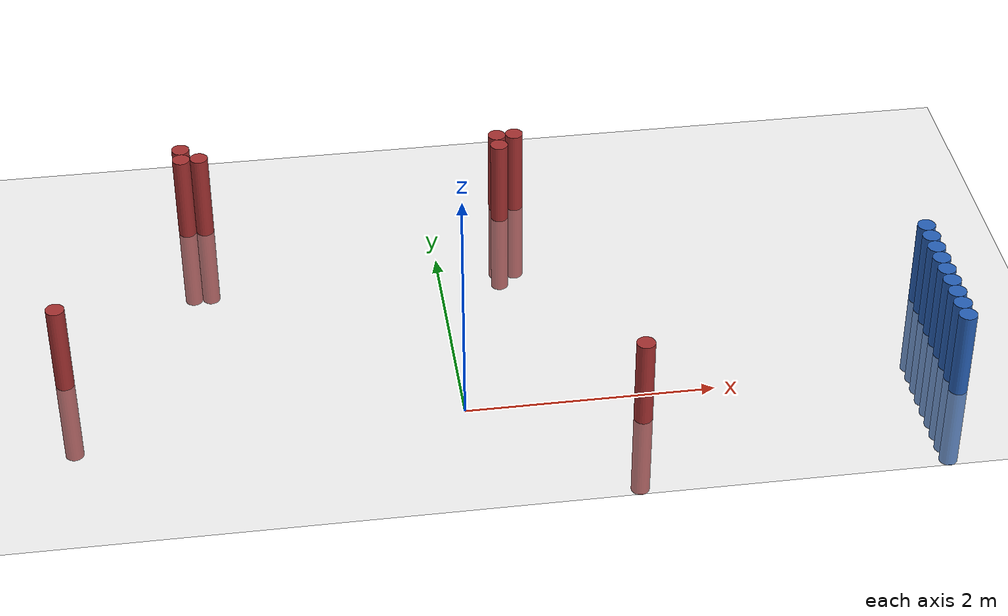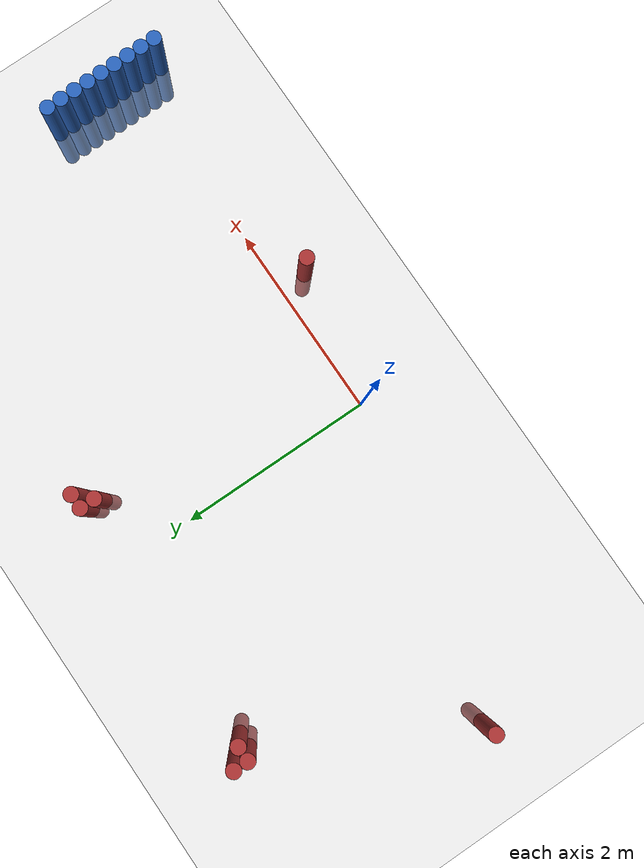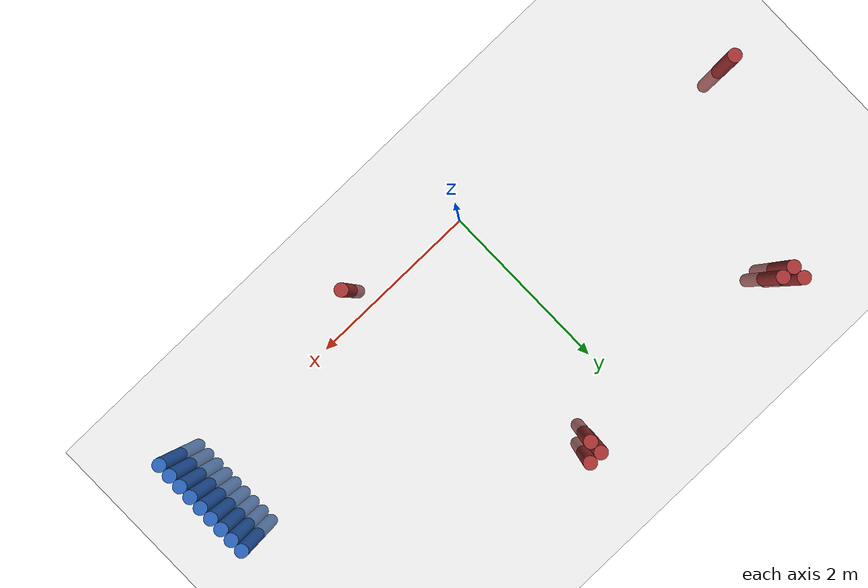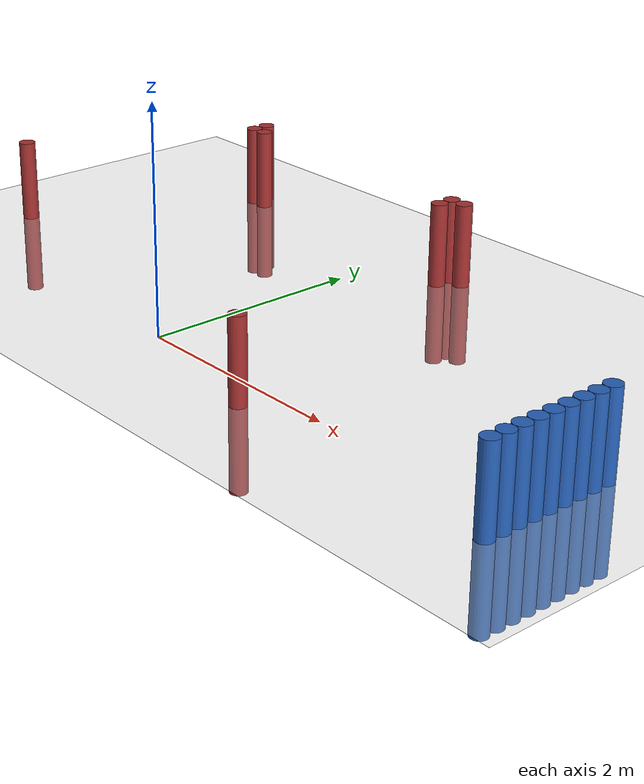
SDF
<sdf version="1.6">
 <world name="default">
  <model name="ground_plane">
   <static>1</static>
   <link name="link">
    <collision name="collision">
     <geometry><plane><normal>0 0 1</normal><size>100 100</size></plane></geometry>
     <surface><friction><ode><mu>100</mu><mu2>50</mu2></ode></friction></surface>
    </collision>
    <visual name="visual">
     <cast_shadows>0</cast_shadows>
     <geometry><plane><normal>0 0 1</normal><size>100 100</size></plane></geometry>
     <material>
      <script><uri>file://media/materials/scripts/gazebo.material</uri><name>Gazebo/Grey</name></script>
     </material>
    </visual>
   </link>
  </model>
  <model name="unit_cylinder_110">
   <static>1</static>
   <pose>3.925000 -0.275000 0.000000 0.000000 0.000000 0.000000</pose>
   <link name="link">
    <inertial>
     <mass>1</mass>
     <inertia><ixx>0.145833</ixx><ixy>0</ixy><ixz>0</ixz><iyy>0.145833</iyy><iyz>0</iyz><izz>0.125</izz></inertia>
    </inertial>
    <collision name="collision">
     <geometry><cylinder><radius>0.075000</radius><length>1.5</length></cylinder></geometry>
    </collision>
    <visual name="visual">
     <geometry><cylinder><radius>0.075000</radius><length>1.5</length></cylinder></geometry>
     <material>
      <ambient>0.152000 0.379000 0.720000 1</ambient>
      <diffuse>0.152000 0.379000 0.720000 1</diffuse>
     </material>
     <material>
      <script><name>Gazebo/Grey</name><uri>file://media/materials/scripts/gazebo.material</uri></script>
     </material>
    </visual>
   </link>
  </model>
  <model name="unit_cylinder_112">
   <static>1</static>
   <pose>3.925000 -0.125000 0.000000 0.000000 0.000000 0.000000</pose>
   <link name="link">
    <inertial>
     <mass>1</mass>
     <inertia><ixx>0.145833</ixx><ixy>0</ixy><ixz>0</ixz><iyy>0.145833</iyy><iyz>0</iyz><izz>0.125</izz></inertia>
    </inertial>
    <collision name="collision">
     <geometry><cylinder><radius>0.075000</radius><length>1.5</length></cylinder></geometry>
    </collision>
    <visual name="visual">
     <geometry><cylinder><radius>0.075000</radius><length>1.5</length></cylinder></geometry>
     <material>
      <ambient>0.152000 0.379000 0.720000 1</ambient>
      <diffuse>0.152000 0.379000 0.720000 1</diffuse>
     </material>
     <material>
      <script><name>Gazebo/Grey</name><uri>file://media/materials/scripts/gazebo.material</uri></script>
     </material>
    </visual>
   </link>
  </model>
  <model name="unit_cylinder_114">
   <static>1</static>
   <pose>3.925000 0.025000 0.000000 0.000000 0.000000 0.000000</pose>
   <link name="link">
    <inertial>
     <mass>1</mass>
     <inertia><ixx>0.145833</ixx><ixy>0</ixy><ixz>0</ixz><iyy>0.145833</iyy><iyz>0</iyz><izz>0.125</izz></inertia>
    </inertial>
    <collision name="collision">
     <geometry><cylinder><radius>0.075000</radius><length>1.5</length></cylinder></geometry>
    </collision>
    <visual name="visual">
     <geometry><cylinder><radius>0.075000</radius><length>1.5</length></cylinder></geometry>
     <material>
      <ambient>0.152000 0.379000 0.720000 1</ambient>
      <diffuse>0.152000 0.379000 0.720000 1</diffuse>
     </material>
     <material>
      <script><name>Gazebo/Grey</name><uri>file://media/materials/scripts/gazebo.material</uri></script>
     </material>
    </visual>
   </link>
  </model>
  <model name="unit_cylinder_116">
   <static>1</static>
   <pose>3.925000 0.175000 0.000000 0.000000 0.000000 0.000000</pose>
   <link name="link">
    <inertial>
     <mass>1</mass>
     <inertia><ixx>0.145833</ixx><ixy>0</ixy><ixz>0</ixz><iyy>0.145833</iyy><iyz>0</iyz><izz>0.125</izz></inertia>
    </inertial>
    <collision name="collision">
     <geometry><cylinder><radius>0.075000</radius><length>1.5</length></cylinder></geometry>
    </collision>
    <visual name="visual">
     <geometry><cylinder><radius>0.075000</radius><length>1.5</length></cylinder></geometry>
     <material>
      <ambient>0.152000 0.379000 0.720000 1</ambient>
      <diffuse>0.152000 0.379000 0.720000 1</diffuse>
     </material>
     <material>
      <script><name>Gazebo/Grey</name><uri>file://media/materials/scripts/gazebo.material</uri></script>
     </material>
    </visual>
   </link>
  </model>
  <model name="unit_cylinder_118">
   <static>1</static>
   <pose>3.925000 0.325000 0.000000 0.000000 0.000000 0.000000</pose>
   <link name="link">
    <inertial>
     <mass>1</mass>
     <inertia><ixx>0.145833</ixx><ixy>0</ixy><ixz>0</ixz><iyy>0.145833</iyy><iyz>0</iyz><izz>0.125</izz></inertia>
    </inertial>
    <collision name="collision">
     <geometry><cylinder><radius>0.075000</radius><length>1.5</length></cylinder></geometry>
    </collision>
    <visual name="visual">
     <geometry><cylinder><radius>0.075000</radius><length>1.5</length></cylinder></geometry>
     <material>
      <ambient>0.152000 0.379000 0.720000 1</ambient>
      <diffuse>0.152000 0.379000 0.720000 1</diffuse>
     </material>
     <material>
      <script><name>Gazebo/Grey</name><uri>file://media/materials/scripts/gazebo.material</uri></script>
     </material>
    </visual>
   </link>
  </model>
  <model name="unit_cylinder_120">
   <static>1</static>
   <pose>3.925000 0.475000 0.000000 0.000000 0.000000 0.000000</pose>
   <link name="link">
    <inertial>
     <mass>1</mass>
     <inertia><ixx>0.145833</ixx><ixy>0</ixy><ixz>0</ixz><iyy>0.145833</iyy><iyz>0</iyz><izz>0.125</izz></inertia>
    </inertial>
    <collision name="collision">
     <geometry><cylinder><radius>0.075000</radius><length>1.5</length></cylinder></geometry>
    </collision>
    <visual name="visual">
     <geometry><cylinder><radius>0.075000</radius><length>1.5</length></cylinder></geometry>
     <material>
      <ambient>0.152000 0.379000 0.720000 1</ambient>
      <diffuse>0.152000 0.379000 0.720000 1</diffuse>
     </material>
     <material>
      <script><name>Gazebo/Grey</name><uri>file://media/materials/scripts/gazebo.material</uri></script>
     </material>
    </visual>
   </link>
  </model>
  <model name="unit_cylinder_122">
   <static>1</static>
   <pose>3.925000 0.625000 0.000000 0.000000 0.000000 0.000000</pose>
   <link name="link">
    <inertial>
     <mass>1</mass>
     <inertia><ixx>0.145833</ixx><ixy>0</ixy><ixz>0</ixz><iyy>0.145833</iyy><iyz>0</iyz><izz>0.125</izz></inertia>
    </inertial>
    <collision name="collision">
     <geometry><cylinder><radius>0.075000</radius><length>1.5</length></cylinder></geometry>
    </collision>
    <visual name="visual">
     <geometry><cylinder><radius>0.075000</radius><length>1.5</length></cylinder></geometry>
     <material>
      <ambient>0.152000 0.379000 0.720000 1</ambient>
      <diffuse>0.152000 0.379000 0.720000 1</diffuse>
     </material>
     <material>
      <script><name>Gazebo/Grey</name><uri>file://media/materials/scripts/gazebo.material</uri></script>
     </material>
    </visual>
   </link>
  </model>
  <model name="unit_cylinder_124">
   <static>1</static>
   <pose>3.925000 0.775000 0.000000 0.000000 0.000000 0.000000</pose>
   <link name="link">
    <inertial>
     <mass>1</mass>
     <inertia><ixx>0.145833</ixx><ixy>0</ixy><ixz>0</ixz><iyy>0.145833</iyy><iyz>0</iyz><izz>0.125</izz></inertia>
    </inertial>
    <collision name="collision">
     <geometry><cylinder><radius>0.075000</radius><length>1.5</length></cylinder></geometry>
    </collision>
    <visual name="visual">
     <geometry><cylinder><radius>0.075000</radius><length>1.5</length></cylinder></geometry>
     <material>
      <ambient>0.152000 0.379000 0.720000 1</ambient>
      <diffuse>0.152000 0.379000 0.720000 1</diffuse>
     </material>
     <material>
      <script><name>Gazebo/Grey</name><uri>file://media/materials/scripts/gazebo.material</uri></script>
     </material>
    </visual>
   </link>
  </model>
  <model name="unit_cylinder_126">
   <static>1</static>
   <pose>3.925000 0.925000 0.000000 0.000000 0.000000 0.000000</pose>
   <link name="link">
    <inertial>
     <mass>1</mass>
     <inertia><ixx>0.145833</ixx><ixy>0</ixy><ixz>0</ixz><iyy>0.145833</iyy><iyz>0</iyz><izz>0.125</izz></inertia>
    </inertial>
    <collision name="collision">
     <geometry><cylinder><radius>0.075000</radius><length>1.5</length></cylinder></geometry>
    </collision>
    <visual name="visual">
     <geometry><cylinder><radius>0.075000</radius><length>1.5</length></cylinder></geometry>
     <material>
      <ambient>0.152000 0.379000 0.720000 1</ambient>
      <diffuse>0.152000 0.379000 0.720000 1</diffuse>
     </material>
     <material>
      <script><name>Gazebo/Grey</name><uri>file://media/materials/scripts/gazebo.material</uri></script>
     </material>
    </visual>
   </link>
  </model>
  <model name="unit_cylinder_281">
   <static>1</static>
   <pose>-3.125000 0.775000 0.000000 0.000000 0.000000 0.000000</pose>
   <link name="link">
    <inertial>
     <mass>1</mass>
     <inertia><ixx>0.145833</ixx><ixy>0</ixy><ixz>0</ixz><iyy>0.145833</iyy><iyz>0</iyz><izz>0.125</izz></inertia>
    </inertial>
    <collision name="collision">
     <geometry><cylinder><radius>0.075000</radius><length>1.5</length></cylinder></geometry>
    </collision>
    <visual name="visual">
     <geometry><cylinder><radius>0.075000</radius><length>1.5</length></cylinder></geometry>
     <material>
      <ambient>0.648000 0.192000 0.192000 1</ambient>
      <diffuse>0.648000 0.192000 0.192000 1</diffuse>
     </material>
     <material>
      <script><name>Gazebo/Grey</name><uri>file://media/materials/scripts/gazebo.material</uri></script>
     </material>
    </visual>
   </link>
  </model>
  <model name="unit_cylinder_285">
   <static>1</static>
   <pose>-2.075000 2.725000 0.000000 0.000000 0.000000 0.000000</pose>
   <link name="link">
    <inertial>
     <mass>1</mass>
     <inertia><ixx>0.145833</ixx><ixy>0</ixy><ixz>0</ixz><iyy>0.145833</iyy><iyz>0</iyz><izz>0.125</izz></inertia>
    </inertial>
    <collision name="collision">
     <geometry><cylinder><radius>0.075000</radius><length>1.5</length></cylinder></geometry>
    </collision>
    <visual name="visual">
     <geometry><cylinder><radius>0.075000</radius><length>1.5</length></cylinder></geometry>
     <material>
      <ambient>0.648000 0.192000 0.192000 1</ambient>
      <diffuse>0.648000 0.192000 0.192000 1</diffuse>
     </material>
     <material>
      <script><name>Gazebo/Grey</name><uri>file://media/materials/scripts/gazebo.material</uri></script>
     </material>
    </visual>
   </link>
  </model>
  <model name="unit_cylinder_286">
   <static>1</static>
   <pose>-2.075000 2.875000 0.000000 0.000000 0.000000 0.000000</pose>
   <link name="link">
    <inertial>
     <mass>1</mass>
     <inertia><ixx>0.145833</ixx><ixy>0</ixy><ixz>0</ixz><iyy>0.145833</iyy><iyz>0</iyz><izz>0.125</izz></inertia>
    </inertial>
    <collision name="collision">
     <geometry><cylinder><radius>0.075000</radius><length>1.5</length></cylinder></geometry>
    </collision>
    <visual name="visual">
     <geometry><cylinder><radius>0.075000</radius><length>1.5</length></cylinder></geometry>
     <material>
      <ambient>0.648000 0.192000 0.192000 1</ambient>
      <diffuse>0.648000 0.192000 0.192000 1</diffuse>
     </material>
     <material>
      <script><name>Gazebo/Grey</name><uri>file://media/materials/scripts/gazebo.material</uri></script>
     </material>
    </visual>
   </link>
  </model>
  <model name="unit_cylinder_289">
   <static>1</static>
   <pose>-1.925000 2.725000 0.000000 0.000000 0.000000 0.000000</pose>
   <link name="link">
    <inertial>
     <mass>1</mass>
     <inertia><ixx>0.145833</ixx><ixy>0</ixy><ixz>0</ixz><iyy>0.145833</iyy><iyz>0</iyz><izz>0.125</izz></inertia>
    </inertial>
    <collision name="collision">
     <geometry><cylinder><radius>0.075000</radius><length>1.5</length></cylinder></geometry>
    </collision>
    <visual name="visual">
     <geometry><cylinder><radius>0.075000</radius><length>1.5</length></cylinder></geometry>
     <material>
      <ambient>0.648000 0.192000 0.192000 1</ambient>
      <diffuse>0.648000 0.192000 0.192000 1</diffuse>
     </material>
     <material>
      <script><name>Gazebo/Grey</name><uri>file://media/materials/scripts/gazebo.material</uri></script>
     </material>
    </visual>
   </link>
  </model>
  <model name="unit_cylinder_290">
   <static>1</static>
   <pose>0.625000 2.575000 0.000000 0.000000 0.000000 0.000000</pose>
   <link name="link">
    <inertial>
     <mass>1</mass>
     <inertia><ixx>0.145833</ixx><ixy>0</ixy><ixz>0</ixz><iyy>0.145833</iyy><iyz>0</iyz><izz>0.125</izz></inertia>
    </inertial>
    <collision name="collision">
     <geometry><cylinder><radius>0.075000</radius><length>1.5</length></cylinder></geometry>
    </collision>
    <visual name="visual">
     <geometry><cylinder><radius>0.075000</radius><length>1.5</length></cylinder></geometry>
     <material>
      <ambient>0.648000 0.192000 0.192000 1</ambient>
      <diffuse>0.648000 0.192000 0.192000 1</diffuse>
     </material>
     <material>
      <script><name>Gazebo/Grey</name><uri>file://media/materials/scripts/gazebo.material</uri></script>
     </material>
    </visual>
   </link>
  </model>
  <model name="unit_cylinder_291">
   <static>1</static>
   <pose>0.625000 2.725000 0.000000 0.000000 0.000000 0.000000</pose>
   <link name="link">
    <inertial>
     <mass>1</mass>
     <inertia><ixx>0.145833</ixx><ixy>0</ixy><ixz>0</ixz><iyy>0.145833</iyy><iyz>0</iyz><izz>0.125</izz></inertia>
    </inertial>
    <collision name="collision">
     <geometry><cylinder><radius>0.075000</radius><length>1.5</length></cylinder></geometry>
    </collision>
    <visual name="visual">
     <geometry><cylinder><radius>0.075000</radius><length>1.5</length></cylinder></geometry>
     <material>
      <ambient>0.648000 0.192000 0.192000 1</ambient>
      <diffuse>0.648000 0.192000 0.192000 1</diffuse>
     </material>
     <material>
      <script><name>Gazebo/Grey</name><uri>file://media/materials/scripts/gazebo.material</uri></script>
     </material>
    </visual>
   </link>
  </model>
  <model name="unit_cylinder_292">
   <static>1</static>
   <pose>0.775000 2.725000 0.000000 0.000000 0.000000 0.000000</pose>
   <link name="link">
    <inertial>
     <mass>1</mass>
     <inertia><ixx>0.145833</ixx><ixy>0</ixy><ixz>0</ixz><iyy>0.145833</iyy><iyz>0</iyz><izz>0.125</izz></inertia>
    </inertial>
    <collision name="collision">
     <geometry><cylinder><radius>0.075000</radius><length>1.5</length></cylinder></geometry>
    </collision>
    <visual name="visual">
     <geometry><cylinder><radius>0.075000</radius><length>1.5</length></cylinder></geometry>
     <material>
      <ambient>0.648000 0.192000 0.192000 1</ambient>
      <diffuse>0.648000 0.192000 0.192000 1</diffuse>
     </material>
     <material>
      <script><name>Gazebo/Grey</name><uri>file://media/materials/scripts/gazebo.material</uri></script>
     </material>
    </visual>
   </link>
  </model>
  <model name="unit_cylinder_295">
   <static>1</static>
   <pose>1.375000 -0.275000 0.000000 0.000000 0.000000 0.000000</pose>
   <link name="link">
    <inertial>
     <mass>1</mass>
     <inertia><ixx>0.145833</ixx><ixy>0</ixy><ixz>0</ixz><iyy>0.145833</iyy><iyz>0</iyz><izz>0.125</izz></inertia>
    </inertial>
    <collision name="collision">
     <geometry><cylinder><radius>0.075000</radius><length>1.5</length></cylinder></geometry>
    </collision>
    <visual name="visual">
     <geometry><cylinder><radius>0.075000</radius><length>1.5</length></cylinder></geometry>
     <material>
      <ambient>0.648000 0.192000 0.192000 1</ambient>
      <diffuse>0.648000 0.192000 0.192000 1</diffuse>
     </material>
     <material>
      <script><name>Gazebo/Grey</name><uri>file://media/materials/scripts/gazebo.material</uri></script>
     </material>
    </visual>
   </link>
  </model>
  <model name="unit_cylinder_325">
   <static>1</static>
   <pose>3.925000 -0.275000 0.000000 0.000000 0.000000 0.000000</pose>
   <link name="link">
    <inertial>
     <mass>1</mass>
     <inertia><ixx>0.145833</ixx><ixy>0</ixy><ixz>0</ixz><iyy>0.145833</iyy><iyz>0</iyz><izz>0.125</izz></inertia>
    </inertial>
    <collision name="collision">
     <geometry><cylinder><radius>0.075000</radius><length>1.5</length></cylinder></geometry>
    </collision>
    <visual name="visual">
     <geometry><cylinder><radius>0.075000</radius><length>1.5</length></cylinder></geometry>
     <material>
      <ambient>0.152000 0.379000 0.720000 1</ambient>
      <diffuse>0.152000 0.379000 0.720000 1</diffuse>
     </material>
     <material>
      <script><name>Gazebo/Grey</name><uri>file://media/materials/scripts/gazebo.material</uri></script>
     </material>
    </visual>
   </link>
  </model>
  <model name="unit_cylinder_326">
   <static>1</static>
   <pose>3.925000 -0.125000 0.000000 0.000000 0.000000 0.000000</pose>
   <link name="link">
    <inertial>
     <mass>1</mass>
     <inertia><ixx>0.145833</ixx><ixy>0</ixy><ixz>0</ixz><iyy>0.145833</iyy><iyz>0</iyz><izz>0.125</izz></inertia>
    </inertial>
    <collision name="collision">
     <geometry><cylinder><radius>0.075000</radius><length>1.5</length></cylinder></geometry>
    </collision>
    <visual name="visual">
     <geometry><cylinder><radius>0.075000</radius><length>1.5</length></cylinder></geometry>
     <material>
      <ambient>0.152000 0.379000 0.720000 1</ambient>
      <diffuse>0.152000 0.379000 0.720000 1</diffuse>
     </material>
     <material>
      <script><name>Gazebo/Grey</name><uri>file://media/materials/scripts/gazebo.material</uri></script>
     </material>
    </visual>
   </link>
  </model>
  <model name="unit_cylinder_327">
   <static>1</static>
   <pose>3.925000 0.025000 0.000000 0.000000 0.000000 0.000000</pose>
   <link name="link">
    <inertial>
     <mass>1</mass>
     <inertia><ixx>0.145833</ixx><ixy>0</ixy><ixz>0</ixz><iyy>0.145833</iyy><iyz>0</iyz><izz>0.125</izz></inertia>
    </inertial>
    <collision name="collision">
     <geometry><cylinder><radius>0.075000</radius><length>1.5</length></cylinder></geometry>
    </collision>
    <visual name="visual">
     <geometry><cylinder><radius>0.075000</radius><length>1.5</length></cylinder></geometry>
     <material>
      <ambient>0.152000 0.379000 0.720000 1</ambient>
      <diffuse>0.152000 0.379000 0.720000 1</diffuse>
     </material>
     <material>
      <script><name>Gazebo/Grey</name><uri>file://media/materials/scripts/gazebo.material</uri></script>
     </material>
    </visual>
   </link>
  </model>
  <model name="unit_cylinder_328">
   <static>1</static>
   <pose>3.925000 0.175000 0.000000 0.000000 0.000000 0.000000</pose>
   <link name="link">
    <inertial>
     <mass>1</mass>
     <inertia><ixx>0.145833</ixx><ixy>0</ixy><ixz>0</ixz><iyy>0.145833</iyy><iyz>0</iyz><izz>0.125</izz></inertia>
    </inertial>
    <collision name="collision">
     <geometry><cylinder><radius>0.075000</radius><length>1.5</length></cylinder></geometry>
    </collision>
    <visual name="visual">
     <geometry><cylinder><radius>0.075000</radius><length>1.5</length></cylinder></geometry>
     <material>
      <ambient>0.152000 0.379000 0.720000 1</ambient>
      <diffuse>0.152000 0.379000 0.720000 1</diffuse>
     </material>
     <material>
      <script><name>Gazebo/Grey</name><uri>file://media/materials/scripts/gazebo.material</uri></script>
     </material>
    </visual>
   </link>
  </model>
  <model name="unit_cylinder_329">
   <static>1</static>
   <pose>3.925000 0.325000 0.000000 0.000000 0.000000 0.000000</pose>
   <link name="link">
    <inertial>
     <mass>1</mass>
     <inertia><ixx>0.145833</ixx><ixy>0</ixy><ixz>0</ixz><iyy>0.145833</iyy><iyz>0</iyz><izz>0.125</izz></inertia>
    </inertial>
    <collision name="collision">
     <geometry><cylinder><radius>0.075000</radius><length>1.5</length></cylinder></geometry>
    </collision>
    <visual name="visual">
     <geometry><cylinder><radius>0.075000</radius><length>1.5</length></cylinder></geometry>
     <material>
      <ambient>0.152000 0.379000 0.720000 1</ambient>
      <diffuse>0.152000 0.379000 0.720000 1</diffuse>
     </material>
     <material>
      <script><name>Gazebo/Grey</name><uri>file://media/materials/scripts/gazebo.material</uri></script>
     </material>
    </visual>
   </link>
  </model>
  <model name="unit_cylinder_330">
   <static>1</static>
   <pose>3.925000 0.475000 0.000000 0.000000 0.000000 0.000000</pose>
   <link name="link">
    <inertial>
     <mass>1</mass>
     <inertia><ixx>0.145833</ixx><ixy>0</ixy><ixz>0</ixz><iyy>0.145833</iyy><iyz>0</iyz><izz>0.125</izz></inertia>
    </inertial>
    <collision name="collision">
     <geometry><cylinder><radius>0.075000</radius><length>1.5</length></cylinder></geometry>
    </collision>
    <visual name="visual">
     <geometry><cylinder><radius>0.075000</radius><length>1.5</length></cylinder></geometry>
     <material>
      <ambient>0.152000 0.379000 0.720000 1</ambient>
      <diffuse>0.152000 0.379000 0.720000 1</diffuse>
     </material>
     <material>
      <script><name>Gazebo/Grey</name><uri>file://media/materials/scripts/gazebo.material</uri></script>
     </material>
    </visual>
   </link>
  </model>
  <model name="unit_cylinder_331">
   <static>1</static>
   <pose>3.925000 0.625000 0.000000 0.000000 0.000000 0.000000</pose>
   <link name="link">
    <inertial>
     <mass>1</mass>
     <inertia><ixx>0.145833</ixx><ixy>0</ixy><ixz>0</ixz><iyy>0.145833</iyy><iyz>0</iyz><izz>0.125</izz></inertia>
    </inertial>
    <collision name="collision">
     <geometry><cylinder><radius>0.075000</radius><length>1.5</length></cylinder></geometry>
    </collision>
    <visual name="visual">
     <geometry><cylinder><radius>0.075000</radius><length>1.5</length></cylinder></geometry>
     <material>
      <ambient>0.152000 0.379000 0.720000 1</ambient>
      <diffuse>0.152000 0.379000 0.720000 1</diffuse>
     </material>
     <material>
      <script><name>Gazebo/Grey</name><uri>file://media/materials/scripts/gazebo.material</uri></script>
     </material>
    </visual>
   </link>
  </model>
  <model name="unit_cylinder_332">
   <static>1</static>
   <pose>3.925000 0.775000 0.000000 0.000000 0.000000 0.000000</pose>
   <link name="link">
    <inertial>
     <mass>1</mass>
     <inertia><ixx>0.145833</ixx><ixy>0</ixy><ixz>0</ixz><iyy>0.145833</iyy><iyz>0</iyz><izz>0.125</izz></inertia>
    </inertial>
    <collision name="collision">
     <geometry><cylinder><radius>0.075000</radius><length>1.5</length></cylinder></geometry>
    </collision>
    <visual name="visual">
     <geometry><cylinder><radius>0.075000</radius><length>1.5</length></cylinder></geometry>
     <material>
      <ambient>0.152000 0.379000 0.720000 1</ambient>
      <diffuse>0.152000 0.379000 0.720000 1</diffuse>
     </material>
     <material>
      <script><name>Gazebo/Grey</name><uri>file://media/materials/scripts/gazebo.material</uri></script>
     </material>
    </visual>
   </link>
  </model>
  <model name="unit_cylinder_333">
   <static>1</static>
   <pose>3.925000 0.925000 0.000000 0.000000 0.000000 0.000000</pose>
   <link name="link">
    <inertial>
     <mass>1</mass>
     <inertia><ixx>0.145833</ixx><ixy>0</ixy><ixz>0</ixz><iyy>0.145833</iyy><iyz>0</iyz><izz>0.125</izz></inertia>
    </inertial>
    <collision name="collision">
     <geometry><cylinder><radius>0.075000</radius><length>1.5</length></cylinder></geometry>
    </collision>
    <visual name="visual">
     <geometry><cylinder><radius>0.075000</radius><length>1.5</length></cylinder></geometry>
     <material>
      <ambient>0.152000 0.379000 0.720000 1</ambient>
      <diffuse>0.152000 0.379000 0.720000 1</diffuse>
     </material>
     <material>
      <script><name>Gazebo/Grey</name><uri>file://media/materials/scripts/gazebo.material</uri></script>
     </material>
    </visual>
   </link>
  </model>
 </world>
</sdf>
